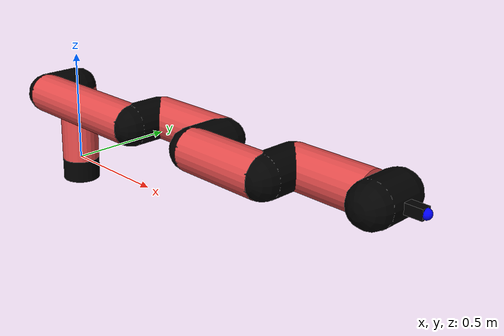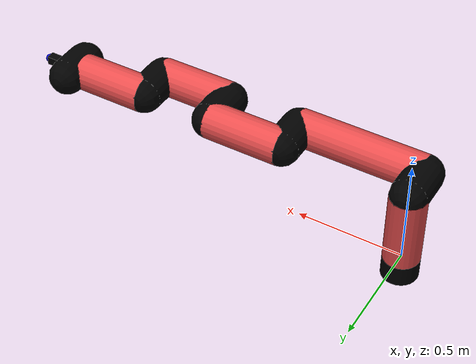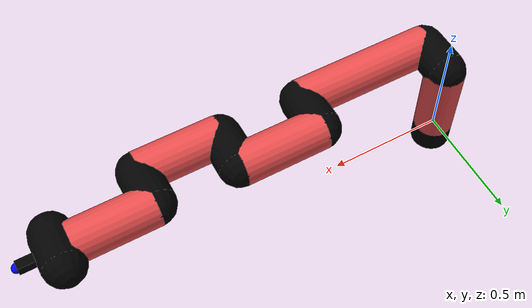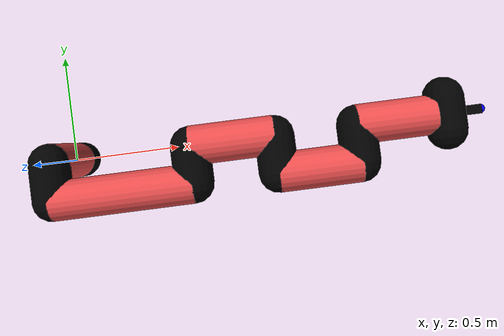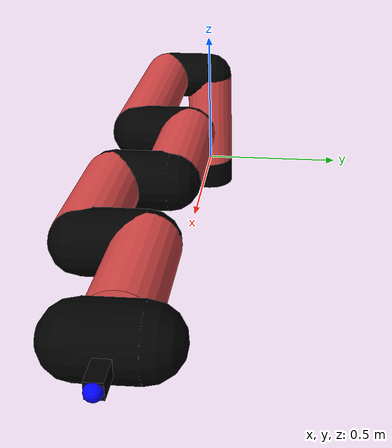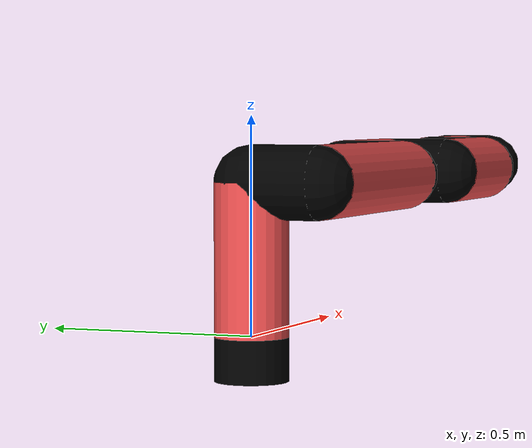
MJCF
<mujoco model="manipulator">
		<compiler angle="degree" coordinate="local" inertiafromgeom="auto" meshdir="meshes/"/>
		<option gravity="0 0 0" integrator="RK4" iterations="30" timestep="0.01"/>

		<default>
		<joint armature="1" limited="true" stiffness="10" damping="15" frictionloss="5.0"/>
		<geom conaffinity="1" condim="3" contype="1" friction=".5 .1 .1" margin="0.002"/>
		<motor ctrllimited="true"/>
		<position ctrllimited="true"/>
		</default>

		<asset>
		<texture builtin="gradient" height="100" rgb1="1.0 1.0 1.0" rgb2="1.0 1.0 1.0" type="skybox" width="100"/>
		<texture builtin="flat" height="32" name="arm_tex" rgb1="0.9 0.3 0.3" type="2d" width="32"/>
		<texture builtin="flat" height="32" name="gripper_tex" rgb1="0.0 0.0 0.0" type="cube" width="32"/>

		<material name="arm_mat" shininess="0.1" specular="0.1" texture="arm_tex"/>
		<material name="gripper_mat" shininess="1" specular="1" texture="gripper_tex"/>
		</asset>

		<worldbody>
		<light cutoff="45" diffuse=".8 .8 .8" dir="0 0.16 -1" directional="false" name="light" pos="0 -2.0 8.0" specular="0.3 0.3 0.3"/>

		<body name="base_link" pos="0 0 -0.1">
		<geom fromto="0 0 0 0 0 0.1" material="arm_mat" name="base_link" rgba="0.0 0.0 0.0 1" size="0.085" type="cylinder"/>
		</body>

		<body name="l1" pos="0 0 0">
<geom fromto="0 0 0 0 0 0.35" material="arm_mat" name="l1" rgba="0.9 0.3 0.3 1" size="0.085" type="cylinder"/>
<geom fromto="0 0 0.35 0 -0.16 0.35" material="arm_mat" name="l1_ex" rgba="0.0 0.0 0.0 1" size="0.085" type="capsule"/>
<joint axis="0 0 1" name="j1" pos="0 0 0" range="-90 90" damping="27.3" frictionloss="8.03"/>

<body name="l2" pos="0 -0.16 0.35">
<geom fromto="0 0 0 0.6 0 0" material="arm_mat" name="l2" rgba="0.9 0.3 0.3 1" size="0.085" type="cylinder"/>
<geom fromto="0.6 0 0 0.6 0.16 0" material="arm_mat" name="l2_ex" rgba="0.0 0.0 0.0 1" size="0.085" type="capsule"/>
<joint axis="-0.11 1.04 0.13" name="j2" pos="0 0 0" range="-90 60" damping="26.9" frictionloss="11.97"/>

<body name="l3" pos="0.6 0.16 0">
<geom fromto="0 0 0 0.36 0 0" material="arm_mat" name="l3" rgba="0.9 0.3 0.3 1" size="0.085" type="cylinder"/>
<geom fromto="0.36 0 0 0.36 -0.16 0" material="arm_mat" name="l3_ex" rgba="0.0 0.0 0.0 1" size="0.085" type="capsule"/>
<joint axis="0.18 1.13 0.1" name="j3" pos="0 0 0" range="-30 60" damping="22.98" frictionloss="9.08"/>

<body name="l4" pos="0.36 -0.16 0">
<geom fromto="0 0 0 0.35 0 0" material="arm_mat" name="l4" rgba="0.9 0.3 0.3 1" size="0.085" type="cylinder"/>
<geom fromto="0.35 0 0 0.35 0.16 0" material="arm_mat" name="l4_ex" rgba="0.0 0.0 0.0 1" size="0.085" type="capsule"/>
<joint axis="0.18 0.91 0.09" name="j4" pos="0 0 0" range="-30 60" damping="36.11" frictionloss="11.7"/>

<body name="l5" pos="0.35 0.16 0">
<geom fromto="0 0 0 0.33 0 0" material="arm_mat" name="l5" rgba="0.9 0.3 0.3 1" size="0.085" type="cylinder"/>
<joint axis="-0.02 0.94 -0.04" name="j5" pos="0 0 0" range="-30 60" damping="25.17" frictionloss="9.66"/>

<body name="gripper" pos="0.33 0 0">
<geom fromto="0.05 -0.07 0 0.05 0.07 0" material="gripper_mat" name="gripper" rgba="0.0 0.0 0.0 1" size="0.085" type="capsule"/><joint axis="1 0 0" name="j6" pos="0 0 0" range="-90 90" damping="15" frictionloss="5.0"/><body name="finger" pos="0.1 0 0">
<geom fromto="0 0.0 0 0.1 0.0 0" material="gripper_mat" name="finger" rgba="0.0 0.0 0.0 1" size="0.020 0.06 0.06" type="box"/>
</body>
<site name="current" pos="0.2 0. 0.0" rgba="0. 0. 1.0 1" size="0.02" type="sphere"/>
</body>
</body>
</body>
</body>
</body>
</body>
</worldbody>
<actuator>
<motor ctrllimited="true" ctrlrange="-1.0 1.0" joint="j1" gear="80.57"/>
<motor ctrllimited="true" ctrlrange="-1.0 1.0" joint="j2" gear="65.67"/>
<motor ctrllimited="true" ctrlrange="-1.0 1.0" joint="j3" gear="96.12"/>
<motor ctrllimited="true" ctrlrange="-1.0 1.0" joint="j4" gear="89.85"/>
<motor ctrllimited="true" ctrlrange="-1.0 1.0" joint="j5" gear="66.32"/>
<motor ctrllimited="true" ctrlrange="-1.0 1.0" joint="j6" gear="80"/>
</actuator>
</mujoco>
